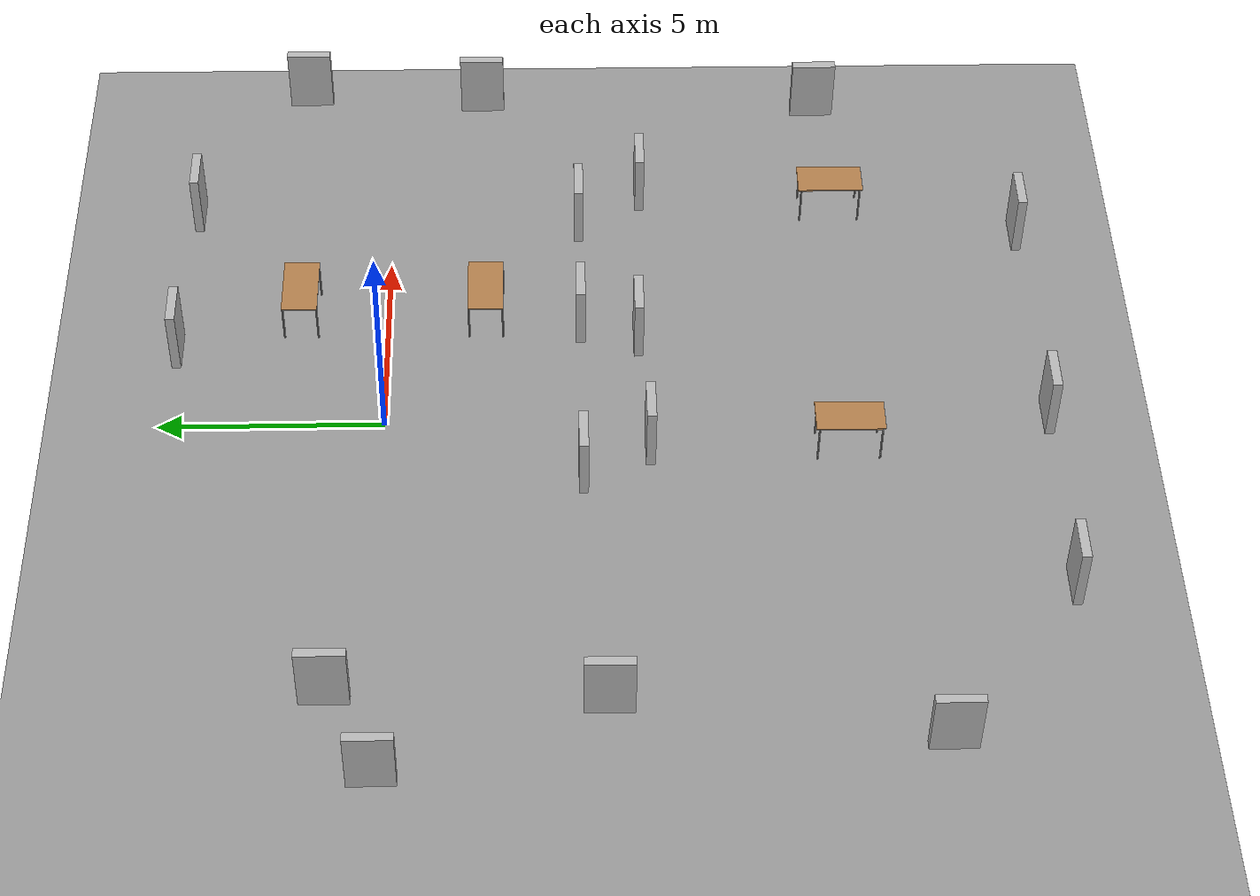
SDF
<sdf version="1.6">
 <world name="default">
  <light name="sun" type="directional">
   <pose>0 0 10 -0.1 -0.5 0</pose>
   <diffuse>0.8 0.8 0.8 1</diffuse>
   <specular>0.2 0.2 0.2 1</specular>
   <attenuation>
    <range>1000</range>
    <constant>0.9</constant>
    <linear>0.01</linear>
    <quadratic>0.001</quadratic>
   </attenuation>
   <direction>-0.5 0.1 -0.9</direction>
  </light>
  <plugin name="ros_interface_plugin" filename="librotors_gazebo_ros_interface_plugin.so"/>
  <spherical_coordinates>
   <surface_model>EARTH_WGS84</surface_model>
   <latitude_deg>47.3667</latitude_deg>
   <longitude_deg>8.55</longitude_deg>
   <elevation>500</elevation>
   <heading_deg>0</heading_deg>
  </spherical_coordinates>
  <physics name="default_physics" default="0" type="ode">
   <ode>
    <solver>
     <type>quick</type>
     <iters>1000</iters>
     <sor>1.3</sor>
     <use_dynamic_moi_rescaling>0</use_dynamic_moi_rescaling>
    </solver>
    <constraints>
     <cfm>0</cfm>
     <erp>0.2</erp>
     <contact_max_correcting_vel>100</contact_max_correcting_vel>
     <contact_surface_layer>0.001</contact_surface_layer>
    </constraints>
   </ode>
   <max_step_size>0.005</max_step_size>
   <real_time_factor>1</real_time_factor>
   <real_time_update_rate>200</real_time_update_rate>
  </physics>
  <scene><ambient>0.4 0.4 0.4 1</ambient><background>0.7 0.7 0.7 1</background><shadows>1</shadows></scene>
  <model name="gallery_plane_0">
   <static>1</static>
   <link name="link">
    <collision name="collision"><geometry><box><size>100 100 0.1</size></box></geometry></collision>
    <visual name="visual">
     <cast_shadows>0</cast_shadows>
     <geometry><box><size>100 100 0.1</size></box></geometry>
     <material>
      <script><uri>file://media/materials/scripts/gazebo.material</uri><name>Gazebo/Grey</name></script>
     </material>
    </visual>
   </link>
  </model>
  <model name="painting_wall_3">
   <static>1</static>
   <link name="link">
    <pose>0 0 1.4 0 -0 0</pose>
    <collision name="collision"><geometry><box><size>1 0.2 1.5</size></box></geometry></collision>
    <visual name="visual">
     <cast_shadows>0</cast_shadows>
     <geometry><box><size>1 0.2 1.5</size></box></geometry>
     <material>
      <script>
       <uri>model://painting_wall/materials/scripts</uri>
       <uri>model://painting_wall/materials/textures</uri>
       <name>vrc/painting_wall4</name>
      </script>
     </material>
    </visual>
   </link>
   <pose>1.89876 -4.32011 0.4612 0 -0 0</pose>
  </model>
  <model name="painting_wall_4">
   <static>1</static>
   <link name="link">
    <pose>0 0 1.4 0 -0 0</pose>
    <collision name="collision"><geometry><box><size>1 0.2 1.5</size></box></geometry></collision>
    <visual name="visual">
     <cast_shadows>0</cast_shadows>
     <geometry><box><size>1 0.2 1.5</size></box></geometry>
     <material>
      <script>
       <uri>model://painting_wall/materials/scripts</uri>
       <uri>model://painting_wall/materials/textures</uri>
       <name>vrc/painting_wall9</name>
      </script>
     </material>
    </visual>
   </link>
   <pose>5.59765 -4.32672 0 0 -0 0</pose>
  </model>
  <model name="painting_wall_6">
   <static>1</static>
   <link name="link">
    <pose>0 0 1.4 0 -0 0</pose>
    <collision name="collision"><geometry><box><size>1 0.2 1.5</size></box></geometry></collision>
    <visual name="visual">
     <cast_shadows>0</cast_shadows>
     <geometry><box><size>1 0.2 1.5</size></box></geometry>
     <material>
      <script>
       <uri>model://painting_wall/materials/scripts</uri>
       <uri>model://painting_wall/materials/textures</uri>
       <name>vrc/painting_wall8</name>
      </script>
     </material>
    </visual>
   </link>
   <pose>6.57122 -5.74442 0.049039 0 -0 0</pose>
  </model>
  <model name="painting_wall_7">
   <static>1</static>
   <link name="link">
    <pose>0 0 1.4 0 -0 0</pose>
    <collision name="collision"><geometry><box><size>1 0.2 1.5</size></box></geometry></collision>
    <visual name="visual">
     <cast_shadows>0</cast_shadows>
     <geometry><box><size>1 0.2 1.5</size></box></geometry>
     <material>
      <script>
       <uri>model://painting_wall/materials/scripts</uri>
       <uri>model://painting_wall/materials/textures</uri>
       <name>vrc/painting_wall10</name>
      </script>
     </material>
    </visual>
   </link>
   <pose>-1.50913 -14.156 1.06355 0 -0 0</pose>
  </model>
  <model name="painting_wall_8">
   <static>1</static>
   <link name="link">
    <pose>0 0 1.4 0 -0 0</pose>
    <collision name="collision"><geometry><box><size>1 0.2 1.5</size></box></geometry></collision>
    <visual name="visual">
     <cast_shadows>0</cast_shadows>
     <geometry><box><size>1 0.2 1.5</size></box></geometry>
     <material>
      <script>
       <uri>model://painting_wall/materials/scripts</uri>
       <uri>model://painting_wall/materials/textures</uri>
       <name>vrc/painting_wall1</name>
      </script>
     </material>
    </visual>
   </link>
   <pose>-9.29809 -11.4465 0.118443 0 -0 1.57</pose>
  </model>
  <model name="painting_wall_8_clone">
   <static>1</static>
   <link name="link">
    <pose>0 0 1.4 0 -0 0</pose>
    <collision name="collision"><geometry><box><size>1 0.2 1.5</size></box></geometry></collision>
    <visual name="visual">
     <cast_shadows>0</cast_shadows>
     <geometry><box><size>1 0.2 1.5</size></box></geometry>
     <material>
      <script>
       <uri>model://painting_wall/materials/scripts</uri>
       <uri>model://painting_wall/materials/textures</uri>
       <name>vrc/painting_wall2</name>
      </script>
     </material>
    </visual>
   </link>
   <pose>-9.2384 0.743242 1.69688 0 -0 1.57</pose>
  </model>
  <model name="painting_wall_8_clone_0">
   <static>1</static>
   <link name="link">
    <pose>0 0 1.4 0 -0 0</pose>
    <collision name="collision"><geometry><box><size>1 0.2 1.5</size></box></geometry></collision>
    <visual name="visual">
     <cast_shadows>0</cast_shadows>
     <geometry><box><size>1 0.2 1.5</size></box></geometry>
     <material>
      <script>
       <uri>model://painting_wall/materials/scripts</uri>
       <uri>model://painting_wall/materials/textures</uri>
       <name>vrc/painting_wall3</name>
      </script>
     </material>
    </visual>
   </link>
   <pose>9.0886 -2.1002 0.60954 0 -0 1.57</pose>
  </model>
  <model name="painting_wall_8_clone_1">
   <static>1</static>
   <link name="link">
    <pose>0 0 1.4 0 -0 0</pose>
    <collision name="collision"><geometry><box><size>1 0.2 1.5</size></box></geometry></collision>
    <visual name="visual">
     <cast_shadows>0</cast_shadows>
     <geometry><box><size>1 0.2 1.5</size></box></geometry>
     <material>
      <script>
       <uri>model://painting_wall/materials/scripts</uri>
       <uri>model://painting_wall/materials/textures</uri>
       <name>vrc/painting_wall5</name>
      </script>
     </material>
    </visual>
   </link>
   <pose>9.3531 -9.96985 0.138352 0 -0 1.57</pose>
  </model>
  <model name="table">
   <static>1</static>
   <link name="link">
    <collision name="surface">
     <pose>0 0 1 0 -0 0</pose>
     <geometry><box><size>1.5 0.8 0.03</size></box></geometry>
     <surface><friction><ode><mu>0.6</mu><mu2>0.6</mu2></ode></friction></surface>
    </collision>
    <visual name="visual1">
     <pose>0 0 1 0 -0 0</pose>
     <geometry><box><size>1.5 0.8 0.03</size></box></geometry>
     <material>
      <script><uri>file://media/materials/scripts/gazebo.material</uri><name>Gazebo/Wood</name></script>
     </material>
    </visual>
    <collision name="front_left_leg">
     <pose>0.68 0.38 0.5 0 -0 0</pose>
     <geometry><cylinder><radius>0.02</radius><length>1</length></cylinder></geometry>
    </collision>
    <visual name="front_left_leg">
     <pose>0.68 0.38 0.5 0 -0 0</pose>
     <geometry><cylinder><radius>0.02</radius><length>1</length></cylinder></geometry>
     <material>
      <script><uri>file://media/materials/scripts/gazebo.material</uri><name>Gazebo/Grey</name></script>
     </material>
    </visual>
    <collision name="front_right_leg">
     <pose>0.68 -0.38 0.5 0 -0 0</pose>
     <geometry><cylinder><radius>0.02</radius><length>1</length></cylinder></geometry>
    </collision>
    <visual name="front_right_leg">
     <pose>0.68 -0.38 0.5 0 -0 0</pose>
     <geometry><cylinder><radius>0.02</radius><length>1</length></cylinder></geometry>
     <material>
      <script><uri>file://media/materials/scripts/gazebo.material</uri><name>Gazebo/Grey</name></script>
     </material>
    </visual>
    <collision name="back_right_leg">
     <pose>-0.68 -0.38 0.5 0 -0 0</pose>
     <geometry><cylinder><radius>0.02</radius><length>1</length></cylinder></geometry>
    </collision>
    <visual name="back_right_leg">
     <pose>-0.68 -0.38 0.5 0 -0 0</pose>
     <geometry><cylinder><radius>0.02</radius><length>1</length></cylinder></geometry>
     <material>
      <script><uri>file://media/materials/scripts/gazebo.material</uri><name>Gazebo/Grey</name></script>
     </material>
    </visual>
    <collision name="back_left_leg">
     <pose>-0.68 0.38 0.5 0 -0 0</pose>
     <geometry><cylinder><radius>0.02</radius><length>1</length></cylinder></geometry>
    </collision>
    <visual name="back_left_leg">
     <pose>-0.68 0.38 0.5 0 -0 0</pose>
     <geometry><cylinder><radius>0.02</radius><length>1</length></cylinder></geometry>
     <material>
      <script><uri>file://media/materials/scripts/gazebo.material</uri><name>Gazebo/Grey</name></script>
     </material>
    </visual>
   </link>
   <pose>3.35011 1.96912 0 0 -0 0</pose>
  </model>
  <model name="table_clone">
   <static>1</static>
   <link name="link">
    <collision name="surface">
     <pose>0 0 1 0 -0 0</pose>
     <geometry><box><size>1.5 0.8 0.03</size></box></geometry>
     <surface><friction><ode><mu>0.6</mu><mu2>0.6</mu2></ode></friction></surface>
    </collision>
    <visual name="visual1">
     <pose>0 0 1 0 -0 0</pose>
     <geometry><box><size>1.5 0.8 0.03</size></box></geometry>
     <material>
      <script><uri>file://media/materials/scripts/gazebo.material</uri><name>Gazebo/Wood</name></script>
     </material>
    </visual>
    <collision name="front_left_leg">
     <pose>0.68 0.38 0.5 0 -0 0</pose>
     <geometry><cylinder><radius>0.02</radius><length>1</length></cylinder></geometry>
    </collision>
    <visual name="front_left_leg">
     <pose>0.68 0.38 0.5 0 -0 0</pose>
     <geometry><cylinder><radius>0.02</radius><length>1</length></cylinder></geometry>
     <material>
      <script><uri>file://media/materials/scripts/gazebo.material</uri><name>Gazebo/Grey</name></script>
     </material>
    </visual>
    <collision name="front_right_leg">
     <pose>0.68 -0.38 0.5 0 -0 0</pose>
     <geometry><cylinder><radius>0.02</radius><length>1</length></cylinder></geometry>
    </collision>
    <visual name="front_right_leg">
     <pose>0.68 -0.38 0.5 0 -0 0</pose>
     <geometry><cylinder><radius>0.02</radius><length>1</length></cylinder></geometry>
     <material>
      <script><uri>file://media/materials/scripts/gazebo.material</uri><name>Gazebo/Grey</name></script>
     </material>
    </visual>
    <collision name="back_right_leg">
     <pose>-0.68 -0.38 0.5 0 -0 0</pose>
     <geometry><cylinder><radius>0.02</radius><length>1</length></cylinder></geometry>
    </collision>
    <visual name="back_right_leg">
     <pose>-0.68 -0.38 0.5 0 -0 0</pose>
     <geometry><cylinder><radius>0.02</radius><length>1</length></cylinder></geometry>
     <material>
      <script><uri>file://media/materials/scripts/gazebo.material</uri><name>Gazebo/Grey</name></script>
     </material>
    </visual>
    <collision name="back_left_leg">
     <pose>-0.68 0.38 0.5 0 -0 0</pose>
     <geometry><cylinder><radius>0.02</radius><length>1</length></cylinder></geometry>
    </collision>
    <visual name="back_left_leg">
     <pose>-0.68 0.38 0.5 0 -0 0</pose>
     <geometry><cylinder><radius>0.02</radius><length>1</length></cylinder></geometry>
     <material>
      <script><uri>file://media/materials/scripts/gazebo.material</uri><name>Gazebo/Grey</name></script>
     </material>
    </visual>
   </link>
   <pose>6.75101 -10.2282 0 0 -0 1.57</pose>
  </model>
  <model name="painting_wall_6_clone">
   <static>1</static>
   <link name="link">
    <pose>0 0 1.4 0 -0 0</pose>
    <collision name="collision"><geometry><box><size>1 0.2 1.5</size></box></geometry></collision>
    <visual name="visual">
     <cast_shadows>0</cast_shadows>
     <geometry><box><size>1 0.2 1.5</size></box></geometry>
     <material>
      <script>
       <uri>model://painting_wall/materials/scripts</uri>
       <uri>model://painting_wall/materials/textures</uri>
       <name>vrc/painting_wall6</name>
      </script>
     </material>
    </visual>
   </link>
   <pose>0.804113 4.44451 0.92348 0 -0 0</pose>
  </model>
  <model name="painting_wall_4_clone">
   <static>1</static>
   <link name="link">
    <pose>0 0 1.4 0 -0 0</pose>
    <collision name="collision"><geometry><box><size>1 0.2 1.5</size></box></geometry></collision>
    <visual name="visual">
     <cast_shadows>0</cast_shadows>
     <geometry><box><size>1 0.2 1.5</size></box></geometry>
     <material>
      <script>
       <uri>model://painting_wall/materials/scripts</uri>
       <uri>model://painting_wall/materials/textures</uri>
       <name>vrc/painting_wall7</name>
      </script>
     </material>
    </visual>
   </link>
   <pose>5.73329 4.38478 0.30286 0 -0 0</pose>
  </model>
  <gravity>0 0 -9.8</gravity>
  <magnetic_field>6e-06 2.3e-05 -4.2e-05</magnetic_field>
  <atmosphere type="adiabatic"/>
  <audio><device>default</device></audio>
  <model name="painting_wall_6_clone_0">
   <static>1</static>
   <link name="link">
    <pose>0 0 1.4 0 -0 0</pose>
    <collision name="collision"><geometry><box><size>1 0.2 1.5</size></box></geometry></collision>
    <visual name="visual">
     <cast_shadows>0</cast_shadows>
     <geometry><box><size>1 0.2 1.5</size></box></geometry>
     <material>
      <script>
       <uri>model://painting_wall/materials/scripts</uri>
       <uri>model://painting_wall/materials/textures</uri>
       <name>vrc/painting_wall8</name>
      </script>
     </material>
    </visual>
   </link>
   <pose>-1.82044 -5.74232 0.58289 0 -0 0</pose>
  </model>
  <model name="painting_wall_7_clone">
   <static>1</static>
   <link name="link">
    <pose>0 0 1.4 0 -0 0</pose>
    <collision name="collision"><geometry><box><size>1 0.2 1.5</size></box></geometry></collision>
    <visual name="visual">
     <cast_shadows>0</cast_shadows>
     <geometry><box><size>1 0.2 1.5</size></box></geometry>
     <material>
      <script>
       <uri>model://painting_wall/materials/scripts</uri>
       <uri>model://painting_wall/materials/textures</uri>
       <name>vrc/painting_wall10</name>
      </script>
     </material>
    </visual>
   </link>
   <pose>-5.72548 -14.2334 0.591539 0 -0 0</pose>
  </model>
  <model name="painting_wall_7_clone_clone">
   <static>1</static>
   <link name="link">
    <pose>0 0 1.4 0 -0 0</pose>
    <collision name="collision"><geometry><box><size>1 0.2 1.5</size></box></geometry></collision>
    <visual name="visual">
     <cast_shadows>0</cast_shadows>
     <geometry><box><size>1 0.2 1.5</size></box></geometry>
     <material>
      <script>
       <uri>model://painting_wall/materials/scripts</uri>
       <uri>model://painting_wall/materials/textures</uri>
       <name>vrc/painting_wall10</name>
      </script>
     </material>
    </visual>
   </link>
   <pose>4.53442 -14.2311 0.591539 0 -0 0</pose>
  </model>
  <model name="painting_wall_8_clone_0_clone">
   <static>1</static>
   <link name="link">
    <pose>0 0 1.4 0 -0 0</pose>
    <collision name="collision"><geometry><box><size>1 0.2 1.5</size></box></geometry></collision>
    <visual name="visual">
     <cast_shadows>0</cast_shadows>
     <geometry><box><size>1 0.2 1.5</size></box></geometry>
     <material>
      <script>
       <uri>model://painting_wall/materials/scripts</uri>
       <uri>model://painting_wall/materials/textures</uri>
       <name>vrc/painting_wall3</name>
      </script>
     </material>
    </visual>
   </link>
   <pose>9.3391 1.97145 0.60954 0 -0 1.57</pose>
  </model>
  <model name="painting_wall_3_clone">
   <static>1</static>
   <link name="link">
    <pose>0 0 1.4 0 -0 0</pose>
    <collision name="collision"><geometry><box><size>1 0.2 1.5</size></box></geometry></collision>
    <visual name="visual">
     <cast_shadows>0</cast_shadows>
     <geometry><box><size>1 0.2 1.5</size></box></geometry>
     <material>
      <script>
       <uri>model://painting_wall/materials/scripts</uri>
       <uri>model://painting_wall/materials/textures</uri>
       <name>vrc/painting_wall4</name>
      </script>
     </material>
    </visual>
   </link>
   <pose>1.46478 -5.5821 0.4612 0 -0 0</pose>
  </model>
  <model name="painting_wall_3_clone_0">
   <static>1</static>
   <link name="link">
    <pose>0 0 1.4 0 -0 0</pose>
    <collision name="collision"><geometry><box><size>1 0.2 1.5</size></box></geometry></collision>
    <visual name="visual">
     <cast_shadows>0</cast_shadows>
     <geometry><box><size>1 0.2 1.5</size></box></geometry>
     <material>
      <script>
       <uri>model://painting_wall/materials/scripts</uri>
       <uri>model://painting_wall/materials/textures</uri>
       <name>vrc/painting_wall4</name>
      </script>
     </material>
    </visual>
   </link>
   <pose>-1.96011 -4.33014 -0.157519 0 -0 0</pose>
  </model>
  <model name="table_clone_clone">
   <static>1</static>
   <link name="link">
    <collision name="surface">
     <pose>0 0 1 0 -0 0</pose>
     <geometry><box><size>1.5 0.8 0.03</size></box></geometry>
     <surface><friction><ode><mu>0.6</mu><mu2>0.6</mu2></ode></friction></surface>
    </collision>
    <visual name="visual1">
     <pose>0 0 1 0 -0 0</pose>
     <geometry><box><size>1.5 0.8 0.03</size></box></geometry>
     <material>
      <script><uri>file://media/materials/scripts/gazebo.material</uri><name>Gazebo/Wood</name></script>
     </material>
    </visual>
    <collision name="front_left_leg">
     <pose>0.68 0.38 0.5 0 -0 0</pose>
     <geometry><cylinder><radius>0.02</radius><length>1</length></cylinder></geometry>
    </collision>
    <visual name="front_left_leg">
     <pose>0.68 0.38 0.5 0 -0 0</pose>
     <geometry><cylinder><radius>0.02</radius><length>1</length></cylinder></geometry>
     <material>
      <script><uri>file://media/materials/scripts/gazebo.material</uri><name>Gazebo/Grey</name></script>
     </material>
    </visual>
    <collision name="front_right_leg">
     <pose>0.68 -0.38 0.5 0 -0 0</pose>
     <geometry><cylinder><radius>0.02</radius><length>1</length></cylinder></geometry>
    </collision>
    <visual name="front_right_leg">
     <pose>0.68 -0.38 0.5 0 -0 0</pose>
     <geometry><cylinder><radius>0.02</radius><length>1</length></cylinder></geometry>
     <material>
      <script><uri>file://media/materials/scripts/gazebo.material</uri><name>Gazebo/Grey</name></script>
     </material>
    </visual>
    <collision name="back_right_leg">
     <pose>-0.68 -0.38 0.5 0 -0 0</pose>
     <geometry><cylinder><radius>0.02</radius><length>1</length></cylinder></geometry>
    </collision>
    <visual name="back_right_leg">
     <pose>-0.68 -0.38 0.5 0 -0 0</pose>
     <geometry><cylinder><radius>0.02</radius><length>1</length></cylinder></geometry>
     <material>
      <script><uri>file://media/materials/scripts/gazebo.material</uri><name>Gazebo/Grey</name></script>
     </material>
    </visual>
    <collision name="back_left_leg">
     <pose>-0.68 0.38 0.5 0 -0 0</pose>
     <geometry><cylinder><radius>0.02</radius><length>1</length></cylinder></geometry>
    </collision>
    <visual name="back_left_leg">
     <pose>-0.68 0.38 0.5 0 -0 0</pose>
     <geometry><cylinder><radius>0.02</radius><length>1</length></cylinder></geometry>
     <material>
      <script><uri>file://media/materials/scripts/gazebo.material</uri><name>Gazebo/Grey</name></script>
     </material>
    </visual>
   </link>
   <pose>-0.776242 -10.1038 0 0 -0 1.57</pose>
  </model>
  <model name="table_clone_0">
   <static>1</static>
   <link name="link">
    <collision name="surface">
     <pose>0 0 1 0 -0 0</pose>
     <geometry><box><size>1.5 0.8 0.03</size></box></geometry>
     <surface><friction><ode><mu>0.6</mu><mu2>0.6</mu2></ode></friction></surface>
    </collision>
    <visual name="visual1">
     <pose>0 0 1 0 -0 0</pose>
     <geometry><box><size>1.5 0.8 0.03</size></box></geometry>
     <material>
      <script><uri>file://media/materials/scripts/gazebo.material</uri><name>Gazebo/Wood</name></script>
     </material>
    </visual>
    <collision name="front_left_leg">
     <pose>0.68 0.38 0.5 0 -0 0</pose>
     <geometry><cylinder><radius>0.02</radius><length>1</length></cylinder></geometry>
    </collision>
    <visual name="front_left_leg">
     <pose>0.68 0.38 0.5 0 -0 0</pose>
     <geometry><cylinder><radius>0.02</radius><length>1</length></cylinder></geometry>
     <material>
      <script><uri>file://media/materials/scripts/gazebo.material</uri><name>Gazebo/Grey</name></script>
     </material>
    </visual>
    <collision name="front_right_leg">
     <pose>0.68 -0.38 0.5 0 -0 0</pose>
     <geometry><cylinder><radius>0.02</radius><length>1</length></cylinder></geometry>
    </collision>
    <visual name="front_right_leg">
     <pose>0.68 -0.38 0.5 0 -0 0</pose>
     <geometry><cylinder><radius>0.02</radius><length>1</length></cylinder></geometry>
     <material>
      <script><uri>file://media/materials/scripts/gazebo.material</uri><name>Gazebo/Grey</name></script>
     </material>
    </visual>
    <collision name="back_right_leg">
     <pose>-0.68 -0.38 0.5 0 -0 0</pose>
     <geometry><cylinder><radius>0.02</radius><length>1</length></cylinder></geometry>
    </collision>
    <visual name="back_right_leg">
     <pose>-0.68 -0.38 0.5 0 -0 0</pose>
     <geometry><cylinder><radius>0.02</radius><length>1</length></cylinder></geometry>
     <material>
      <script><uri>file://media/materials/scripts/gazebo.material</uri><name>Gazebo/Grey</name></script>
     </material>
    </visual>
    <collision name="back_left_leg">
     <pose>-0.68 0.38 0.5 0 -0 0</pose>
     <geometry><cylinder><radius>0.02</radius><length>1</length></cylinder></geometry>
    </collision>
    <visual name="back_left_leg">
     <pose>-0.68 0.38 0.5 0 -0 0</pose>
     <geometry><cylinder><radius>0.02</radius><length>1</length></cylinder></geometry>
     <material>
      <script><uri>file://media/materials/scripts/gazebo.material</uri><name>Gazebo/Grey</name></script>
     </material>
    </visual>
   </link>
   <pose>3.31817 -2.20427 0 0 -0 0</pose>
  </model>
  <model name="painting_wall_8_clone_clone">
   <static>1</static>
   <link name="link">
    <pose>0 0 1.4 0 -0 0</pose>
    <collision name="collision"><geometry><box><size>1 0.2 1.5</size></box></geometry></collision>
    <visual name="visual">
     <cast_shadows>0</cast_shadows>
     <geometry><box><size>1 0.2 1.5</size></box></geometry>
     <material>
      <script>
       <uri>model://painting_wall/materials/scripts</uri>
       <uri>model://painting_wall/materials/textures</uri>
       <name>vrc/painting_wall2</name>
      </script>
     </material>
    </visual>
   </link>
   <pose>-9.94743 -0.090657 0 0 -0 1.57</pose>
  </model>
  <model name="painting_wall_8_clone_clone_0">
   <static>1</static>
   <link name="link">
    <pose>0 0 1.4 0 -0 0</pose>
    <collision name="collision"><geometry><box><size>1 0.2 1.5</size></box></geometry></collision>
    <visual name="visual">
     <cast_shadows>0</cast_shadows>
     <geometry><box><size>1 0.2 1.5</size></box></geometry>
     <material>
      <script>
       <uri>model://painting_wall/materials/scripts</uri>
       <uri>model://painting_wall/materials/textures</uri>
       <name>vrc/painting_wall2</name>
      </script>
     </material>
    </visual>
   </link>
   <pose>-9.36815 -4.70895 1.51136 0 -0 1.57</pose>
  </model>
 </world>
</sdf>
